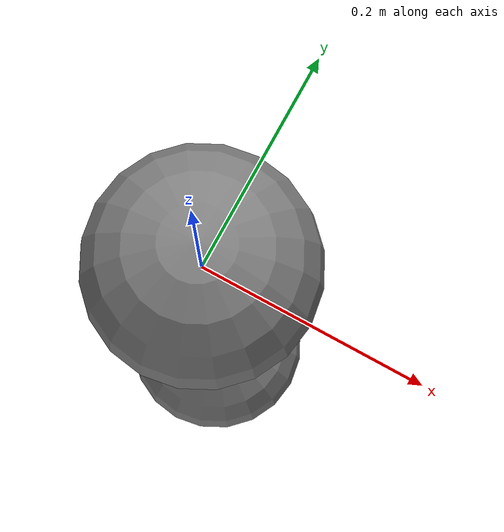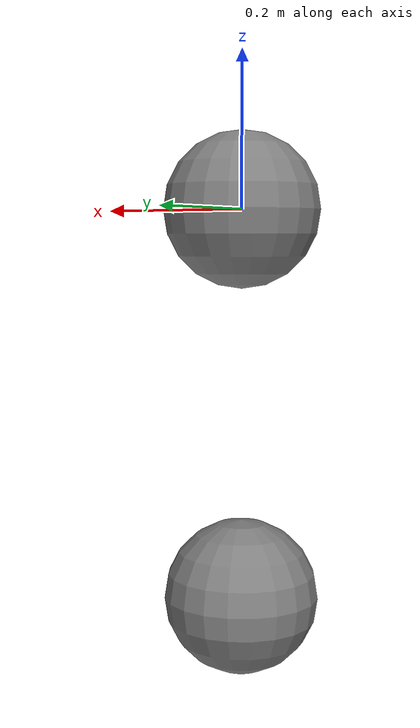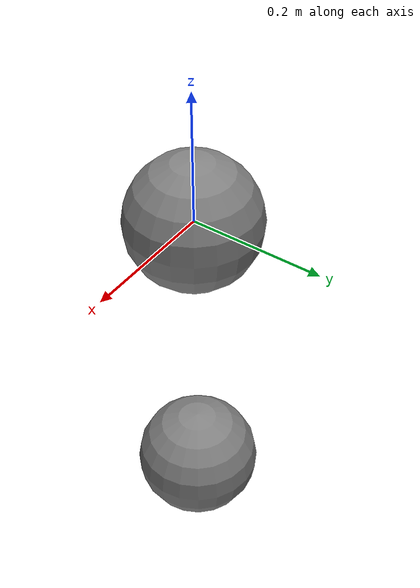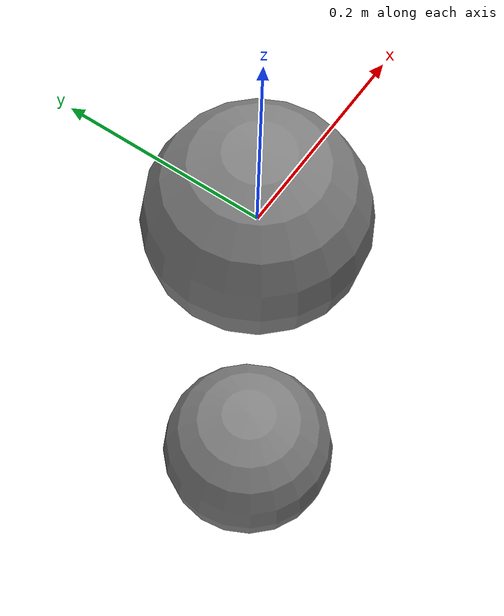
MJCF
<mujoco>
          <option gravity="0 0 0" timestep="0.001"/>
          <worldbody>
            <body name="a" pos="0 0 0">
              <freejoint/>
              <geom type="sphere" size="0.1" mass="1"/>
            </body>
            <body name="b" pos="0 0 -0.5">
              <freejoint/>
              <geom type="sphere" size="0.1" mass="1"/>
            </body>
          </worldbody>
          <equality>
            <connect body1="a" body2="b" anchor="0 0 -0.5"/>
          </equality>
        </mujoco>
